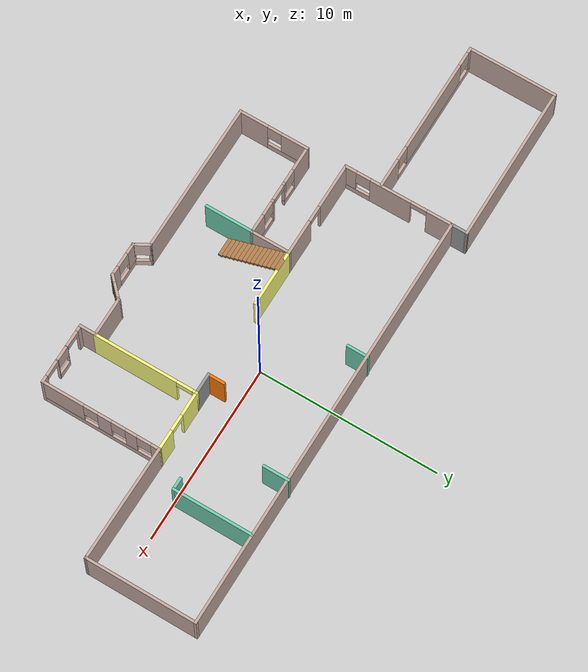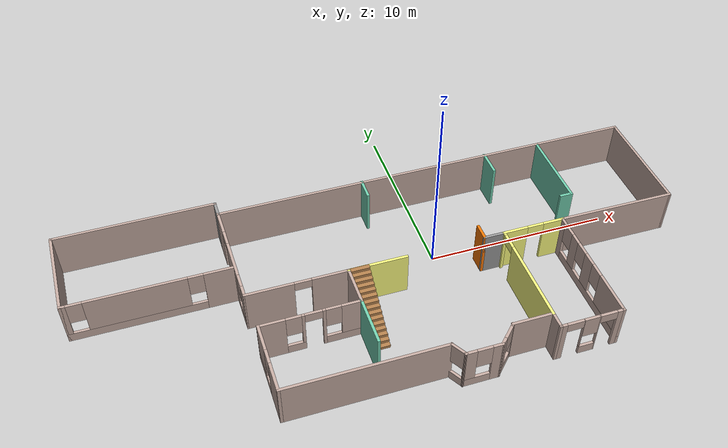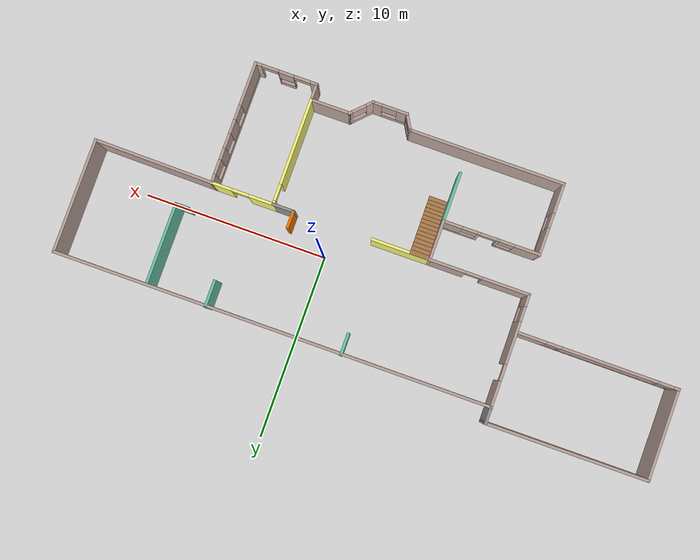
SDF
<sdf version="1.6">
 <model name="roboHouse">
  <pose>-3.13444 -1.49025 0 0 -0 0</pose>
  <link name="Stairs_0">
   <visual name="Stairs_0_Visual_0">
    <pose>-1.50756 -3.39009 0.083333 0 -0 -3.14159</pose>
    <geometry><box><size>1 0.233333 0.166667</size></box></geometry>
    <material>
     <script><uri>file://media/materials/scripts/gazebo.material</uri><name>Gazebo/Wood</name></script>
     <ambient>0.760784 0.662745 0.627451 1</ambient>
    </material>
    <meta><layer>0</layer></meta>
   </visual>
   <collision name="Stairs_0_Collision_0">
    <geometry><box><size>1 0.233333 0.166667</size></box></geometry>
    <pose>-1.50756 -3.39009 0.083333 0 -0 -3.14159</pose>
   </collision>
   <visual name="Stairs_0_Visual_1">
    <pose>-1.50756 -3.15675 0.25 0 -0 -3.14159</pose>
    <geometry><box><size>1 0.233333 0.166667</size></box></geometry>
    <material>
     <script><uri>file://media/materials/scripts/gazebo.material</uri><name>Gazebo/Wood</name></script>
     <ambient>0.760784 0.662745 0.627451 1</ambient>
    </material>
    <meta><layer>0</layer></meta>
   </visual>
   <collision name="Stairs_0_Collision_1">
    <geometry><box><size>1 0.233333 0.166667</size></box></geometry>
    <pose>-1.50756 -3.15675 0.25 0 -0 -3.14159</pose>
   </collision>
   <visual name="Stairs_0_Visual_2">
    <pose>-1.50756 -2.92342 0.416667 0 -0 -3.14159</pose>
    <geometry><box><size>1 0.233333 0.166667</size></box></geometry>
    <material>
     <script><uri>file://media/materials/scripts/gazebo.material</uri><name>Gazebo/Wood</name></script>
     <ambient>0.760784 0.662745 0.627451 1</ambient>
    </material>
    <meta><layer>0</layer></meta>
   </visual>
   <collision name="Stairs_0_Collision_2">
    <geometry><box><size>1 0.233333 0.166667</size></box></geometry>
    <pose>-1.50756 -2.92342 0.416667 0 -0 -3.14159</pose>
   </collision>
   <visual name="Stairs_0_Visual_3">
    <pose>-1.50756 -2.69009 0.583333 0 -0 -3.14159</pose>
    <geometry><box><size>1 0.233333 0.166667</size></box></geometry>
    <material>
     <script><uri>file://media/materials/scripts/gazebo.material</uri><name>Gazebo/Wood</name></script>
     <ambient>0.760784 0.662745 0.627451 1</ambient>
    </material>
    <meta><layer>0</layer></meta>
   </visual>
   <collision name="Stairs_0_Collision_3">
    <geometry><box><size>1 0.233333 0.166667</size></box></geometry>
    <pose>-1.50756 -2.69009 0.583333 0 -0 -3.14159</pose>
   </collision>
   <visual name="Stairs_0_Visual_4">
    <pose>-1.50756 -2.45675 0.75 0 -0 -3.14159</pose>
    <geometry><box><size>1 0.233333 0.166667</size></box></geometry>
    <material>
     <script><uri>file://media/materials/scripts/gazebo.material</uri><name>Gazebo/Wood</name></script>
     <ambient>0.760784 0.662745 0.627451 1</ambient>
    </material>
    <meta><layer>0</layer></meta>
   </visual>
   <collision name="Stairs_0_Collision_4">
    <geometry><box><size>1 0.233333 0.166667</size></box></geometry>
    <pose>-1.50756 -2.45675 0.75 0 -0 -3.14159</pose>
   </collision>
   <visual name="Stairs_0_Visual_5">
    <pose>-1.50756 -2.22342 0.916667 0 -0 -3.14159</pose>
    <geometry><box><size>1 0.233333 0.166667</size></box></geometry>
    <material>
     <script><uri>file://media/materials/scripts/gazebo.material</uri><name>Gazebo/Wood</name></script>
     <ambient>0.760784 0.662745 0.627451 1</ambient>
    </material>
    <meta><layer>0</layer></meta>
   </visual>
   <collision name="Stairs_0_Collision_5">
    <geometry><box><size>1 0.233333 0.166667</size></box></geometry>
    <pose>-1.50756 -2.22342 0.916667 0 -0 -3.14159</pose>
   </collision>
   <visual name="Stairs_0_Visual_6">
    <pose>-1.50756 -1.99009 1.08333 0 -0 -3.14159</pose>
    <geometry><box><size>1 0.233333 0.166667</size></box></geometry>
    <material>
     <script><uri>file://media/materials/scripts/gazebo.material</uri><name>Gazebo/Wood</name></script>
     <ambient>0.760784 0.662745 0.627451 1</ambient>
    </material>
    <meta><layer>0</layer></meta>
   </visual>
   <collision name="Stairs_0_Collision_6">
    <geometry><box><size>1 0.233333 0.166667</size></box></geometry>
    <pose>-1.50756 -1.99009 1.08333 0 -0 -3.14159</pose>
   </collision>
   <visual name="Stairs_0_Visual_7">
    <pose>-1.50756 -1.75675 1.25 0 -0 -3.14159</pose>
    <geometry><box><size>1 0.233333 0.166667</size></box></geometry>
    <material>
     <script><uri>file://media/materials/scripts/gazebo.material</uri><name>Gazebo/Wood</name></script>
     <ambient>0.760784 0.662745 0.627451 1</ambient>
    </material>
    <meta><layer>0</layer></meta>
   </visual>
   <collision name="Stairs_0_Collision_7">
    <geometry><box><size>1 0.233333 0.166667</size></box></geometry>
    <pose>-1.50756 -1.75675 1.25 0 -0 -3.14159</pose>
   </collision>
   <visual name="Stairs_0_Visual_8">
    <pose>-1.50756 -1.52342 1.41667 0 -0 -3.14159</pose>
    <geometry><box><size>1 0.233333 0.166667</size></box></geometry>
    <material>
     <script><uri>file://media/materials/scripts/gazebo.material</uri><name>Gazebo/Wood</name></script>
     <ambient>0.760784 0.662745 0.627451 1</ambient>
    </material>
    <meta><layer>0</layer></meta>
   </visual>
   <collision name="Stairs_0_Collision_8">
    <geometry><box><size>1 0.233333 0.166667</size></box></geometry>
    <pose>-1.50756 -1.52342 1.41667 0 -0 -3.14159</pose>
   </collision>
   <visual name="Stairs_0_Visual_9">
    <pose>-1.50756 -1.29009 1.58333 0 -0 -3.14159</pose>
    <geometry><box><size>1 0.233333 0.166667</size></box></geometry>
    <material>
     <script><uri>file://media/materials/scripts/gazebo.material</uri><name>Gazebo/Wood</name></script>
     <ambient>0.760784 0.662745 0.627451 1</ambient>
    </material>
    <meta><layer>0</layer></meta>
   </visual>
   <collision name="Stairs_0_Collision_9">
    <geometry><box><size>1 0.233333 0.166667</size></box></geometry>
    <pose>-1.50756 -1.29009 1.58333 0 -0 -3.14159</pose>
   </collision>
   <visual name="Stairs_0_Visual_10">
    <pose>-1.50756 -1.05675 1.75 0 -0 -3.14159</pose>
    <geometry><box><size>1 0.233333 0.166667</size></box></geometry>
    <material>
     <script><uri>file://media/materials/scripts/gazebo.material</uri><name>Gazebo/Wood</name></script>
     <ambient>0.760784 0.662745 0.627451 1</ambient>
    </material>
    <meta><layer>0</layer></meta>
   </visual>
   <collision name="Stairs_0_Collision_10">
    <geometry><box><size>1 0.233333 0.166667</size></box></geometry>
    <pose>-1.50756 -1.05675 1.75 0 -0 -3.14159</pose>
   </collision>
   <visual name="Stairs_0_Visual_11">
    <pose>-1.50756 -0.823421 1.91667 0 -0 -3.14159</pose>
    <geometry><box><size>1 0.233333 0.166667</size></box></geometry>
    <material>
     <script><uri>file://media/materials/scripts/gazebo.material</uri><name>Gazebo/Wood</name></script>
     <ambient>0.760784 0.662745 0.627451 1</ambient>
    </material>
    <meta><layer>0</layer></meta>
   </visual>
   <collision name="Stairs_0_Collision_11">
    <geometry><box><size>1 0.233333 0.166667</size></box></geometry>
    <pose>-1.50756 -0.823421 1.91667 0 -0 -3.14159</pose>
   </collision>
   <visual name="Stairs_0_Visual_12">
    <pose>-1.50756 -0.590088 2.08333 0 -0 -3.14159</pose>
    <geometry><box><size>1 0.233333 0.166667</size></box></geometry>
    <material>
     <script><uri>file://media/materials/scripts/gazebo.material</uri><name>Gazebo/Wood</name></script>
     <ambient>0.760784 0.662745 0.627451 1</ambient>
    </material>
    <meta><layer>0</layer></meta>
   </visual>
   <collision name="Stairs_0_Collision_12">
    <geometry><box><size>1 0.233333 0.166667</size></box></geometry>
    <pose>-1.50756 -0.590088 2.08333 0 -0 -3.14159</pose>
   </collision>
   <visual name="Stairs_0_Visual_13">
    <pose>-1.50756 -0.356754 2.25 0 -0 -3.14159</pose>
    <geometry><box><size>1 0.233333 0.166667</size></box></geometry>
    <material>
     <script><uri>file://media/materials/scripts/gazebo.material</uri><name>Gazebo/Wood</name></script>
     <ambient>0.760784 0.662745 0.627451 1</ambient>
    </material>
    <meta><layer>0</layer></meta>
   </visual>
   <collision name="Stairs_0_Collision_13">
    <geometry><box><size>1 0.233333 0.166667</size></box></geometry>
    <pose>-1.50756 -0.356754 2.25 0 -0 -3.14159</pose>
   </collision>
   <visual name="Stairs_0_Visual_14">
    <pose>-1.50756 -0.123421 2.41667 0 -0 -3.14159</pose>
    <geometry><box><size>1 0.233333 0.166667</size></box></geometry>
    <material>
     <script><uri>file://media/materials/scripts/gazebo.material</uri><name>Gazebo/Wood</name></script>
     <ambient>0.760784 0.662745 0.627451 1</ambient>
    </material>
    <meta><layer>0</layer></meta>
   </visual>
   <collision name="Stairs_0_Collision_14">
    <geometry><box><size>1 0.233333 0.166667</size></box></geometry>
    <pose>-1.50756 -0.123421 2.41667 0 -0 -3.14159</pose>
   </collision>
  </link>
  <link name="Wall_1">
   <pose>9.75444 -3.36976 0 0 0 -1.5708</pose>
   <visual name="Wall_1_Visual_0">
    <pose>-3.11075 0 1.25 0 -0 0</pose>
    <geometry><box><size>0.5285 0.15 2.5</size></box></geometry>
    <material>
     <script><uri>file://media/materials/scripts/gazebo.material</uri><name>Gazebo/Grey</name></script>
     <ambient>0.760784 0.662745 0.627451 1</ambient>
    </material>
    <meta><layer>0</layer></meta>
   </visual>
   <collision name="Wall_1_Collision_0">
    <geometry><box><size>0.5285 0.15 2.5</size></box></geometry>
    <pose>-3.11075 0 1.25 0 -0 0</pose>
   </collision>
   <visual name="Wall_1_Visual_1">
    <pose>0.26425 0 0.25 0 -0 0</pose>
    <geometry><box><size>6.2215 0.15 0.5</size></box></geometry>
    <material>
     <script><uri>file://media/materials/scripts/gazebo.material</uri><name>Gazebo/Grey</name></script>
     <ambient>0.760784 0.662745 0.627451 1</ambient>
    </material>
    <meta><layer>0</layer></meta>
   </visual>
   <collision name="Wall_1_Collision_1">
    <geometry><box><size>6.2215 0.15 0.5</size></box></geometry>
    <pose>0.26425 0 0.25 0 -0 0</pose>
   </collision>
   <visual name="Wall_1_Visual_2">
    <pose>-1.72468 0 1.5 0 -0 0</pose>
    <geometry><box><size>0.643636 0.15 2</size></box></geometry>
    <material>
     <script><uri>file://media/materials/scripts/gazebo.material</uri><name>Gazebo/Grey</name></script>
     <ambient>0.760784 0.662745 0.627451 1</ambient>
    </material>
    <meta><layer>0</layer></meta>
   </visual>
   <collision name="Wall_1_Collision_2">
    <geometry><box><size>0.643636 0.15 2</size></box></geometry>
    <pose>-1.72468 0 1.5 0 -0 0</pose>
   </collision>
   <visual name="Wall_1_Visual_3">
    <pose>-0.215811 0 1.5 0 -0 0</pose>
    <geometry><box><size>0.774106 0.15 2</size></box></geometry>
    <material>
     <script><uri>file://media/materials/scripts/gazebo.material</uri><name>Gazebo/Grey</name></script>
     <ambient>0.760784 0.662745 0.627451 1</ambient>
    </material>
    <meta><layer>0</layer></meta>
   </visual>
   <collision name="Wall_1_Collision_3">
    <geometry><box><size>0.774106 0.15 2</size></box></geometry>
    <pose>-0.215811 0 1.5 0 -0 0</pose>
   </collision>
   <visual name="Wall_1_Visual_4">
    <pose>2.17312 0 1.5 0 -0 0</pose>
    <geometry><box><size>2.40376 0.15 2</size></box></geometry>
    <material>
     <script><uri>file://media/materials/scripts/gazebo.material</uri><name>Gazebo/Grey</name></script>
     <ambient>0.760784 0.662745 0.627451 1</ambient>
    </material>
    <meta><layer>0</layer></meta>
   </visual>
   <collision name="Wall_1_Collision_4">
    <geometry><box><size>2.40376 0.15 2</size></box></geometry>
    <pose>2.17312 0 1.5 0 -0 0</pose>
   </collision>
   <visual name="Wall_1_Visual_5">
    <pose>-2.4465 0 1.9 0 -0 0</pose>
    <geometry><box><size>0.8 0.15 1.2</size></box></geometry>
    <material>
     <script><uri>file://media/materials/scripts/gazebo.material</uri><name>Gazebo/Grey</name></script>
     <ambient>0.760784 0.662745 0.627451 1</ambient>
    </material>
    <meta><layer>0</layer></meta>
   </visual>
   <collision name="Wall_1_Collision_5">
    <geometry><box><size>0.8 0.15 1.2</size></box></geometry>
    <pose>-2.4465 0 1.9 0 -0 0</pose>
   </collision>
   <visual name="Wall_1_Visual_6">
    <pose>-1.00286 0 1.9 0 -0 0</pose>
    <geometry><box><size>0.8 0.15 1.2</size></box></geometry>
    <material>
     <script><uri>file://media/materials/scripts/gazebo.material</uri><name>Gazebo/Grey</name></script>
     <ambient>0.760784 0.662745 0.627451 1</ambient>
    </material>
    <meta><layer>0</layer></meta>
   </visual>
   <collision name="Wall_1_Collision_6">
    <geometry><box><size>0.8 0.15 1.2</size></box></geometry>
    <pose>-1.00286 0 1.9 0 -0 0</pose>
   </collision>
   <visual name="Wall_1_Visual_7">
    <pose>0.571241 0 1.9 0 -0 0</pose>
    <geometry><box><size>0.8 0.15 1.2</size></box></geometry>
    <material>
     <script><uri>file://media/materials/scripts/gazebo.material</uri><name>Gazebo/Grey</name></script>
     <ambient>0.760784 0.662745 0.627451 1</ambient>
    </material>
    <meta><layer>0</layer></meta>
   </visual>
   <collision name="Wall_1_Collision_7">
    <geometry><box><size>0.8 0.15 1.2</size></box></geometry>
    <pose>0.571241 0 1.9 0 -0 0</pose>
   </collision>
  </link>
  <link name="Wall_10">
   <pose>-4.68535 -2.17899 0 0 -0 0.003566</pose>
   <visual name="Wall_10_Visual_0">
    <pose>-1.95766 0 1.25 0 -0 0</pose>
    <geometry><box><size>1.4143 0.15 2.5</size></box></geometry>
    <material>
     <script><uri>file://media/materials/scripts/gazebo.material</uri><name>Gazebo/Grey</name></script>
     <ambient>0.760784 0.662745 0.627451 1</ambient>
    </material>
    <meta><layer>0</layer></meta>
   </visual>
   <collision name="Wall_10_Collision_0">
    <geometry><box><size>1.4143 0.15 2.5</size></box></geometry>
    <pose>-1.95766 0 1.25 0 -0 0</pose>
   </collision>
   <visual name="Wall_10_Visual_1">
    <pose>0.68156 0 1.25 0 -0 0</pose>
    <geometry><box><size>0.155471 0.15 2.5</size></box></geometry>
    <material>
     <script><uri>file://media/materials/scripts/gazebo.material</uri><name>Gazebo/Grey</name></script>
     <ambient>0.760784 0.662745 0.627451 1</ambient>
    </material>
    <meta><layer>0</layer></meta>
   </visual>
   <collision name="Wall_10_Collision_1">
    <geometry><box><size>0.155471 0.15 2.5</size></box></geometry>
    <pose>0.68156 0 1.25 0 -0 0</pose>
   </collision>
   <visual name="Wall_10_Visual_2">
    <pose>-0.773344 0 0.25 0 -0 0</pose>
    <geometry><box><size>0.954338 0.15 0.5</size></box></geometry>
    <material>
     <script><uri>file://media/materials/scripts/gazebo.material</uri><name>Gazebo/Grey</name></script>
     <ambient>0.760784 0.662745 0.627451 1</ambient>
    </material>
    <meta><layer>0</layer></meta>
   </visual>
   <collision name="Wall_10_Collision_2">
    <geometry><box><size>0.954338 0.15 0.5</size></box></geometry>
    <pose>-0.773344 0 0.25 0 -0 0</pose>
   </collision>
   <visual name="Wall_10_Visual_3">
    <pose>1.71206 0 0.25 0 -0 0</pose>
    <geometry><box><size>1.90552 0.15 0.5</size></box></geometry>
    <material>
     <script><uri>file://media/materials/scripts/gazebo.material</uri><name>Gazebo/Grey</name></script>
     <ambient>0.760784 0.662745 0.627451 1</ambient>
    </material>
    <meta><layer>0</layer></meta>
   </visual>
   <collision name="Wall_10_Collision_3">
    <geometry><box><size>1.90552 0.15 0.5</size></box></geometry>
    <pose>1.71206 0 0.25 0 -0 0</pose>
   </collision>
   <visual name="Wall_10_Visual_4">
    <pose>-0.373344 0 1.5 0 -0 0</pose>
    <geometry><box><size>0.154338 0.15 2</size></box></geometry>
    <material>
     <script><uri>file://media/materials/scripts/gazebo.material</uri><name>Gazebo/Grey</name></script>
     <ambient>0.760784 0.662745 0.627451 1</ambient>
    </material>
    <meta><layer>0</layer></meta>
   </visual>
   <collision name="Wall_10_Collision_4">
    <geometry><box><size>0.154338 0.15 2</size></box></geometry>
    <pose>-0.373344 0 1.5 0 -0 0</pose>
   </collision>
   <visual name="Wall_10_Visual_5">
    <pose>-0.373344 0 1.5 0 -0 0</pose>
    <geometry><box><size>0.154338 0.15 2</size></box></geometry>
    <material>
     <script><uri>file://media/materials/scripts/gazebo.material</uri><name>Gazebo/Grey</name></script>
     <ambient>0.760784 0.662745 0.627451 1</ambient>
    </material>
    <meta><layer>0</layer></meta>
   </visual>
   <collision name="Wall_10_Collision_5">
    <geometry><box><size>0.154338 0.15 2</size></box></geometry>
    <pose>-0.373344 0 1.5 0 -0 0</pose>
   </collision>
   <visual name="Wall_10_Visual_6">
    <pose>2.11205 0 1.5 0 -0 0</pose>
    <geometry><box><size>1.10552 0.15 2</size></box></geometry>
    <material>
     <script><uri>file://media/materials/scripts/gazebo.material</uri><name>Gazebo/Grey</name></script>
     <ambient>0.760784 0.662745 0.627451 1</ambient>
    </material>
    <meta><layer>0</layer></meta>
   </visual>
   <collision name="Wall_10_Collision_6">
    <geometry><box><size>1.10552 0.15 2</size></box></geometry>
    <pose>2.11205 0 1.5 0 -0 0</pose>
   </collision>
   <visual name="Wall_10_Visual_7">
    <pose>-0.850514 0 1.9 0 -0 0</pose>
    <geometry><box><size>0.8 0.15 1.2</size></box></geometry>
    <material>
     <script><uri>file://media/materials/scripts/gazebo.material</uri><name>Gazebo/Grey</name></script>
     <ambient>0.760784 0.662745 0.627451 1</ambient>
    </material>
    <meta><layer>0</layer></meta>
   </visual>
   <collision name="Wall_10_Collision_7">
    <geometry><box><size>0.8 0.15 1.2</size></box></geometry>
    <pose>-0.850514 0 1.9 0 -0 0</pose>
   </collision>
   <visual name="Wall_10_Visual_8">
    <pose>1.1593 0 1.9 0 -0 0</pose>
    <geometry><box><size>0.8 0.15 1.2</size></box></geometry>
    <material>
     <script><uri>file://media/materials/scripts/gazebo.material</uri><name>Gazebo/Grey</name></script>
     <ambient>0.760784 0.662745 0.627451 1</ambient>
    </material>
    <meta><layer>0</layer></meta>
   </visual>
   <collision name="Wall_10_Collision_8">
    <geometry><box><size>0.8 0.15 1.2</size></box></geometry>
    <pose>1.1593 0 1.9 0 -0 0</pose>
   </collision>
   <visual name="Wall_10_Visual_9">
    <pose>0.153825 0 2.25 0 -0 0</pose>
    <geometry><box><size>0.9 0.15 0.5</size></box></geometry>
    <material>
     <script><uri>file://media/materials/scripts/gazebo.material</uri><name>Gazebo/Grey</name></script>
     <ambient>0.760784 0.662745 0.627451 1</ambient>
    </material>
    <meta><layer>0</layer></meta>
   </visual>
   <collision name="Wall_10_Collision_9">
    <geometry><box><size>0.9 0.15 0.5</size></box></geometry>
    <pose>0.153825 0 2.25 0 -0 0</pose>
   </collision>
   <visual name="Wall_10_Visual_10">
    <pose>0.153825 0 2.25 0 -0 0</pose>
    <geometry><box><size>0.9 0.15 0.5</size></box></geometry>
    <material>
     <script><uri>file://media/materials/scripts/gazebo.material</uri><name>Gazebo/Grey</name></script>
     <ambient>0.760784 0.662745 0.627451 1</ambient>
    </material>
    <meta><layer>0</layer></meta>
   </visual>
   <collision name="Wall_10_Collision_10">
    <geometry><box><size>0.9 0.15 0.5</size></box></geometry>
    <pose>0.153825 0 2.25 0 -0 0</pose>
   </collision>
  </link>
  <link name="Wall_11">
   <collision name="Wall_11_Collision">
    <geometry><box><size>2.25 0.15 2.5</size></box></geometry>
    <pose>0 0 1.25 0 -0 0</pose>
   </collision>
   <visual name="Wall_11_Visual">
    <pose>0 0 1.25 0 -0 0</pose>
    <geometry><box><size>2.25 0.15 2.5</size></box></geometry>
    <material>
     <script><uri>file://media/materials/scripts/gazebo.material</uri><name>Gazebo/Grey</name></script>
     <ambient>0.760784 0.662745 0.627451 1</ambient>
    </material>
    <meta><layer>0</layer></meta>
   </visual>
   <pose>-2.09556 -1.11975 0 0 -0 1.5708</pose>
  </link>
  <link name="Wall_13">
   <collision name="Wall_13_Collision">
    <geometry><box><size>6.51573 0.15 2.5</size></box></geometry>
    <pose>0 0 1.25 0 -0 0</pose>
   </collision>
   <visual name="Wall_13_Visual">
    <pose>0 0 1.25 0 -0 0</pose>
    <geometry><box><size>6.51573 0.15 2.5</size></box></geometry>
    <material>
     <script><uri>file://media/materials/scripts/gazebo.material</uri><name>Gazebo/Grey</name></script>
     <ambient>0.760784 0.662745 0.627451 1</ambient>
    </material>
    <meta><layer>0</layer></meta>
   </visual>
   <pose>12.9371 -0.107254 0 0 0 -0.011782</pose>
  </link>
  <link name="Wall_14">
   <collision name="Wall_14_Collision">
    <geometry><box><size>6.25 0.15 2.5</size></box></geometry>
    <pose>0 0 1.25 0 -0 0</pose>
   </collision>
   <visual name="Wall_14_Visual">
    <pose>0 0 1.25 0 -0 0</pose>
    <geometry><box><size>6.25 0.15 2.5</size></box></geometry>
    <material>
     <script><uri>file://media/materials/scripts/gazebo.material</uri><name>Gazebo/Grey</name></script>
     <ambient>0.760784 0.662745 0.627451 1</ambient>
    </material>
    <meta><layer>0</layer></meta>
   </visual>
   <pose>16.1197 2.90525 0 0 -0 1.5708</pose>
  </link>
  <link name="Wall_15">
   <collision name="Wall_15_Collision">
    <geometry><box><size>23.75 0.15 2.5</size></box></geometry>
    <pose>0 0 1.25 0 -0 0</pose>
   </collision>
   <visual name="Wall_15_Visual">
    <pose>0 0 1.25 0 -0 0</pose>
    <geometry><box><size>23.75 0.15 2.5</size></box></geometry>
    <material>
     <script><uri>file://media/materials/scripts/gazebo.material</uri><name>Gazebo/Grey</name></script>
     <ambient>0.760784 0.662745 0.627451 1</ambient>
    </material>
    <meta><layer>0</layer></meta>
   </visual>
   <pose>4.31973 5.95525 0 0 -0 3.14159</pose>
  </link>
  <link name="Wall_16">
   <pose>-7.46291 2.94275 0 0 0 -1.56503</pose>
   <visual name="Wall_16_Visual_0">
    <pose>-2.34957 0 1.25 0 -0 0</pose>
    <geometry><box><size>1.47595 0.15 2.5</size></box></geometry>
    <material>
     <script><uri>file://media/materials/scripts/gazebo.material</uri><name>Gazebo/Grey</name></script>
     <ambient>0.760784 0.662745 0.627451 1</ambient>
    </material>
    <meta><layer>0</layer></meta>
   </visual>
   <collision name="Wall_16_Collision_0">
    <geometry><box><size>1.47595 0.15 2.5</size></box></geometry>
    <pose>-2.34957 0 1.25 0 -0 0</pose>
   </collision>
   <visual name="Wall_16_Visual_1">
    <pose>0.43708 0 1.25 0 -0 0</pose>
    <geometry><box><size>2.29735 0.15 2.5</size></box></geometry>
    <material>
     <script><uri>file://media/materials/scripts/gazebo.material</uri><name>Gazebo/Grey</name></script>
     <ambient>0.760784 0.662745 0.627451 1</ambient>
    </material>
    <meta><layer>0</layer></meta>
   </visual>
   <collision name="Wall_16_Collision_1">
    <geometry><box><size>2.29735 0.15 2.5</size></box></geometry>
    <pose>0.43708 0 1.25 0 -0 0</pose>
   </collision>
   <visual name="Wall_16_Visual_2">
    <pose>2.33665 0 0.25 0 -0 0</pose>
    <geometry><box><size>1.50179 0.15 0.5</size></box></geometry>
    <material>
     <script><uri>file://media/materials/scripts/gazebo.material</uri><name>Gazebo/Grey</name></script>
     <ambient>0.760784 0.662745 0.627451 1</ambient>
    </material>
    <meta><layer>0</layer></meta>
   </visual>
   <collision name="Wall_16_Collision_2">
    <geometry><box><size>1.50179 0.15 0.5</size></box></geometry>
    <pose>2.33665 0 0.25 0 -0 0</pose>
   </collision>
   <visual name="Wall_16_Visual_3">
    <pose>2.73665 0 1.5 0 -0 0</pose>
    <geometry><box><size>0.701794 0.15 2</size></box></geometry>
    <material>
     <script><uri>file://media/materials/scripts/gazebo.material</uri><name>Gazebo/Grey</name></script>
     <ambient>0.760784 0.662745 0.627451 1</ambient>
    </material>
    <meta><layer>0</layer></meta>
   </visual>
   <collision name="Wall_16_Collision_3">
    <geometry><box><size>0.701794 0.15 2</size></box></geometry>
    <pose>2.73665 0 1.5 0 -0 0</pose>
   </collision>
   <visual name="Wall_16_Visual_4">
    <pose>1.98576 0 1.9 0 -0 0</pose>
    <geometry><box><size>0.8 0.15 1.2</size></box></geometry>
    <material>
     <script><uri>file://media/materials/scripts/gazebo.material</uri><name>Gazebo/Grey</name></script>
     <ambient>0.760784 0.662745 0.627451 1</ambient>
    </material>
    <meta><layer>0</layer></meta>
   </visual>
   <collision name="Wall_16_Collision_4">
    <geometry><box><size>0.8 0.15 1.2</size></box></geometry>
    <pose>1.98576 0 1.9 0 -0 0</pose>
   </collision>
   <visual name="Wall_16_Visual_5">
    <pose>-1.1616 0 2.25 0 -0 0</pose>
    <geometry><box><size>0.9 0.15 0.5</size></box></geometry>
    <material>
     <script><uri>file://media/materials/scripts/gazebo.material</uri><name>Gazebo/Grey</name></script>
     <ambient>0.760784 0.662745 0.627451 1</ambient>
    </material>
    <meta><layer>0</layer></meta>
   </visual>
   <collision name="Wall_16_Collision_5">
    <geometry><box><size>0.9 0.15 0.5</size></box></geometry>
    <pose>-1.1616 0 2.25 0 -0 0</pose>
   </collision>
  </link>
  <link name="Wall_17">
   <pose>-4.77056 -0.069754 0 0 -0 0</pose>
   <visual name="Wall_17_Visual_0">
    <pose>-1.45331 0 1.25 0 -0 0</pose>
    <geometry><box><size>2.59339 0.15 2.5</size></box></geometry>
    <material>
     <script><uri>file://media/materials/scripts/gazebo.material</uri><name>Gazebo/Grey</name></script>
     <ambient>0.760784 0.662745 0.627451 1</ambient>
    </material>
    <meta><layer>0</layer></meta>
   </visual>
   <collision name="Wall_17_Collision_0">
    <geometry><box><size>2.59339 0.15 2.5</size></box></geometry>
    <pose>-1.45331 0 1.25 0 -0 0</pose>
   </collision>
   <visual name="Wall_17_Visual_1">
    <pose>1.7467 0 1.25 0 -0 0</pose>
    <geometry><box><size>2.00661 0.15 2.5</size></box></geometry>
    <material>
     <script><uri>file://media/materials/scripts/gazebo.material</uri><name>Gazebo/Grey</name></script>
     <ambient>0.760784 0.662745 0.627451 1</ambient>
    </material>
    <meta><layer>0</layer></meta>
   </visual>
   <collision name="Wall_17_Collision_1">
    <geometry><box><size>2.00661 0.15 2.5</size></box></geometry>
    <pose>1.7467 0 1.25 0 -0 0</pose>
   </collision>
   <visual name="Wall_17_Visual_2">
    <pose>0.29339 0 2.25 0 -0 0</pose>
    <geometry><box><size>0.9 0.15 0.5</size></box></geometry>
    <material>
     <script><uri>file://media/materials/scripts/gazebo.material</uri><name>Gazebo/Grey</name></script>
     <ambient>0.760784 0.662745 0.627451 1</ambient>
    </material>
    <meta><layer>0</layer></meta>
   </visual>
   <collision name="Wall_17_Collision_2">
    <geometry><box><size>0.9 0.15 0.5</size></box></geometry>
    <pose>0.29339 0 2.25 0 -0 0</pose>
   </collision>
  </link>
  <link name="Wall_19">
   <pose>6.40444 -2.94475 0 0 -0 1.5708</pose>
   <visual name="Wall_19_Visual_0">
    <pose>-0.589035 0 1.25 0 -0 0</pose>
    <geometry><box><size>4.72193 0.15 2.5</size></box></geometry>
    <material>
     <script><uri>file://media/materials/scripts/gazebo.material</uri><name>Gazebo/Grey</name></script>
     <ambient>1 1 0.498039 1</ambient>
    </material>
    <meta><layer>0</layer></meta>
   </visual>
   <collision name="Wall_19_Collision_0">
    <geometry><box><size>4.72193 0.15 2.5</size></box></geometry>
    <pose>-0.589035 0 1.25 0 -0 0</pose>
   </collision>
   <visual name="Wall_19_Visual_1">
    <pose>2.81096 0 1.25 0 -0 0</pose>
    <geometry><box><size>0.27807 0.15 2.5</size></box></geometry>
    <material>
     <script><uri>file://media/materials/scripts/gazebo.material</uri><name>Gazebo/Grey</name></script>
     <ambient>1 1 0.498039 1</ambient>
    </material>
    <meta><layer>0</layer></meta>
   </visual>
   <collision name="Wall_19_Collision_1">
    <geometry><box><size>0.27807 0.15 2.5</size></box></geometry>
    <pose>2.81096 0 1.25 0 -0 0</pose>
   </collision>
   <visual name="Wall_19_Visual_2">
    <pose>2.22193 0 2.25 0 -0 0</pose>
    <geometry><box><size>0.9 0.15 0.5</size></box></geometry>
    <material>
     <script><uri>file://media/materials/scripts/gazebo.material</uri><name>Gazebo/Grey</name></script>
     <ambient>1 1 0.498039 1</ambient>
    </material>
    <meta><layer>0</layer></meta>
   </visual>
   <collision name="Wall_19_Collision_2">
    <geometry><box><size>0.9 0.15 0.5</size></box></geometry>
    <pose>2.22193 0 2.25 0 -0 0</pose>
   </collision>
  </link>
  <link name="Wall_2">
   <pose>8.07944 -6.66975 0 0 -0 3.14159</pose>
   <visual name="Wall_2_Visual_0">
    <pose>-1.539 0 1.25 0 -0 0</pose>
    <geometry><box><size>0.422 0.15 2.5</size></box></geometry>
    <material>
     <script><uri>file://media/materials/scripts/gazebo.material</uri><name>Gazebo/Grey</name></script>
     <ambient>0.760784 0.662745 0.627451 1</ambient>
    </material>
    <meta><layer>0</layer></meta>
   </visual>
   <collision name="Wall_2_Collision_0">
    <geometry><box><size>0.422 0.15 2.5</size></box></geometry>
    <pose>-1.539 0 1.25 0 -0 0</pose>
   </collision>
   <visual name="Wall_2_Visual_1">
    <pose>-0.403875 0 1.25 0 -0 0</pose>
    <geometry><box><size>0.04825 0.15 2.5</size></box></geometry>
    <material>
     <script><uri>file://media/materials/scripts/gazebo.material</uri><name>Gazebo/Grey</name></script>
     <ambient>0.760784 0.662745 0.627451 1</ambient>
    </material>
    <meta><layer>0</layer></meta>
   </visual>
   <collision name="Wall_2_Collision_1">
    <geometry><box><size>0.04825 0.15 2.5</size></box></geometry>
    <pose>-0.403875 0 1.25 0 -0 0</pose>
   </collision>
   <visual name="Wall_2_Visual_2">
    <pose>1.54655 0 1.25 0 -0 0</pose>
    <geometry><box><size>0.4069 0.15 2.5</size></box></geometry>
    <material>
     <script><uri>file://media/materials/scripts/gazebo.material</uri><name>Gazebo/Grey</name></script>
     <ambient>0.760784 0.662745 0.627451 1</ambient>
    </material>
    <meta><layer>0</layer></meta>
   </visual>
   <collision name="Wall_2_Collision_2">
    <geometry><box><size>0.4069 0.15 2.5</size></box></geometry>
    <pose>1.54655 0 1.25 0 -0 0</pose>
   </collision>
   <visual name="Wall_2_Visual_3">
    <pose>0.031675 0 0.25 0 -0 0</pose>
    <geometry><box><size>0.82285 0.15 0.5</size></box></geometry>
    <material>
     <script><uri>file://media/materials/scripts/gazebo.material</uri><name>Gazebo/Grey</name></script>
     <ambient>0.760784 0.662745 0.627451 1</ambient>
    </material>
    <meta><layer>0</layer></meta>
   </visual>
   <collision name="Wall_2_Collision_3">
    <geometry><box><size>0.82285 0.15 0.5</size></box></geometry>
    <pose>0.031675 0 0.25 0 -0 0</pose>
   </collision>
   <visual name="Wall_2_Visual_4">
    <pose>0.431675 0 1.5 0 -0 0</pose>
    <geometry><box><size>0.02285 0.15 2</size></box></geometry>
    <material>
     <script><uri>file://media/materials/scripts/gazebo.material</uri><name>Gazebo/Grey</name></script>
     <ambient>0.760784 0.662745 0.627451 1</ambient>
    </material>
    <meta><layer>0</layer></meta>
   </visual>
   <collision name="Wall_2_Collision_4">
    <geometry><box><size>0.02285 0.15 2</size></box></geometry>
    <pose>0.431675 0 1.5 0 -0 0</pose>
   </collision>
   <visual name="Wall_2_Visual_5">
    <pose>0.02025 0 1.9 0 -0 0</pose>
    <geometry><box><size>0.8 0.15 1.2</size></box></geometry>
    <material>
     <script><uri>file://media/materials/scripts/gazebo.material</uri><name>Gazebo/Grey</name></script>
     <ambient>0.760784 0.662745 0.627451 1</ambient>
    </material>
    <meta><layer>0</layer></meta>
   </visual>
   <collision name="Wall_2_Collision_5">
    <geometry><box><size>0.8 0.15 1.2</size></box></geometry>
    <pose>0.02025 0 1.9 0 -0 0</pose>
   </collision>
   <visual name="Wall_2_Visual_6">
    <pose>-0.878 0 2.25 0 -0 0</pose>
    <geometry><box><size>0.9 0.15 0.5</size></box></geometry>
    <material>
     <script><uri>file://media/materials/scripts/gazebo.material</uri><name>Gazebo/Grey</name></script>
     <ambient>0.760784 0.662745 0.627451 1</ambient>
    </material>
    <meta><layer>0</layer></meta>
   </visual>
   <collision name="Wall_2_Collision_6">
    <geometry><box><size>0.9 0.15 0.5</size></box></geometry>
    <pose>-0.878 0 2.25 0 -0 0</pose>
   </collision>
   <visual name="Wall_2_Visual_7">
    <pose>0.8931 0 2.25 0 -0 0</pose>
    <geometry><box><size>0.9 0.15 0.5</size></box></geometry>
    <material>
     <script><uri>file://media/materials/scripts/gazebo.material</uri><name>Gazebo/Grey</name></script>
     <ambient>0.760784 0.662745 0.627451 1</ambient>
    </material>
    <meta><layer>0</layer></meta>
   </visual>
   <collision name="Wall_2_Collision_7">
    <geometry><box><size>0.9 0.15 0.5</size></box></geometry>
    <pose>0.8931 0 2.25 0 -0 0</pose>
   </collision>
  </link>
  <link name="Wall_20">
   <pose>8.07944 -0.069754 0 0 -0 0</pose>
   <visual name="Wall_20_Visual_0">
    <pose>-1.0469 0 1.25 0 -0 0</pose>
    <geometry><box><size>1.4062 0.15 2.5</size></box></geometry>
    <material>
     <script><uri>file://media/materials/scripts/gazebo.material</uri><name>Gazebo/Grey</name></script>
     <ambient>1 1 0.498039 1</ambient>
    </material>
    <meta><layer>0</layer></meta>
   </visual>
   <collision name="Wall_20_Collision_0">
    <geometry><box><size>1.4062 0.15 2.5</size></box></geometry>
    <pose>-1.0469 0 1.25 0 -0 0</pose>
   </collision>
   <visual name="Wall_20_Visual_1">
    <pose>1.1531 0 1.25 0 -0 0</pose>
    <geometry><box><size>1.19381 0.15 2.5</size></box></geometry>
    <material>
     <script><uri>file://media/materials/scripts/gazebo.material</uri><name>Gazebo/Grey</name></script>
     <ambient>1 1 0.498039 1</ambient>
    </material>
    <meta><layer>0</layer></meta>
   </visual>
   <collision name="Wall_20_Collision_1">
    <geometry><box><size>1.19381 0.15 2.5</size></box></geometry>
    <pose>1.1531 0 1.25 0 -0 0</pose>
   </collision>
   <visual name="Wall_20_Visual_2">
    <pose>0.106195 0 2.25 0 -0 0</pose>
    <geometry><box><size>0.9 0.15 0.5</size></box></geometry>
    <material>
     <script><uri>file://media/materials/scripts/gazebo.material</uri><name>Gazebo/Grey</name></script>
     <ambient>1 1 0.498039 1</ambient>
    </material>
    <meta><layer>0</layer></meta>
   </visual>
   <collision name="Wall_20_Collision_2">
    <geometry><box><size>0.9 0.15 0.5</size></box></geometry>
    <pose>0.106195 0 2.25 0 -0 0</pose>
   </collision>
  </link>
  <link name="Wall_22">
   <pose>-11.8204 1.93566 0 0 -0 3.14159</pose>
   <visual name="Wall_22_Visual_0">
    <pose>-3.55806 0 1.25 0 -0 0</pose>
    <geometry><box><size>1.63389 0.15 2.5</size></box></geometry>
    <material>
     <script><uri>file://media/materials/scripts/gazebo.material</uri><name>Gazebo/Grey</name></script>
     <ambient>0.760784 0.662745 0.627451 1</ambient>
    </material>
    <meta><layer>0</layer></meta>
   </visual>
   <collision name="Wall_22_Collision_0">
    <geometry><box><size>1.63389 0.15 2.5</size></box></geometry>
    <pose>-3.55806 0 1.25 0 -0 0</pose>
   </collision>
   <visual name="Wall_22_Visual_1">
    <pose>0.816943 0 0.25 0 -0 0</pose>
    <geometry><box><size>7.11611 0.15 0.5</size></box></geometry>
    <material>
     <script><uri>file://media/materials/scripts/gazebo.material</uri><name>Gazebo/Grey</name></script>
     <ambient>0.760784 0.662745 0.627451 1</ambient>
    </material>
    <meta><layer>0</layer></meta>
   </visual>
   <collision name="Wall_22_Collision_1">
    <geometry><box><size>7.11611 0.15 0.5</size></box></geometry>
    <pose>0.816943 0 0.25 0 -0 0</pose>
   </collision>
   <visual name="Wall_22_Visual_2">
    <pose>0.649688 0 1.5 0 -0 0</pose>
    <geometry><box><size>5.1816 0.15 2</size></box></geometry>
    <material>
     <script><uri>file://media/materials/scripts/gazebo.material</uri><name>Gazebo/Grey</name></script>
     <ambient>0.760784 0.662745 0.627451 1</ambient>
    </material>
    <meta><layer>0</layer></meta>
   </visual>
   <collision name="Wall_22_Collision_2">
    <geometry><box><size>5.1816 0.15 2</size></box></geometry>
    <pose>0.649688 0 1.5 0 -0 0</pose>
   </collision>
   <visual name="Wall_22_Visual_3">
    <pose>4.20774 0 1.5 0 -0 0</pose>
    <geometry><box><size>0.334511 0.15 2</size></box></geometry>
    <material>
     <script><uri>file://media/materials/scripts/gazebo.material</uri><name>Gazebo/Grey</name></script>
     <ambient>0.760784 0.662745 0.627451 1</ambient>
    </material>
    <meta><layer>0</layer></meta>
   </visual>
   <collision name="Wall_22_Collision_3">
    <geometry><box><size>0.334511 0.15 2</size></box></geometry>
    <pose>4.20774 0 1.5 0 -0 0</pose>
   </collision>
   <visual name="Wall_22_Visual_4">
    <pose>-2.34111 0 1.9 0 -0 0</pose>
    <geometry><box><size>0.8 0.15 1.2</size></box></geometry>
    <material>
     <script><uri>file://media/materials/scripts/gazebo.material</uri><name>Gazebo/Grey</name></script>
     <ambient>0.760784 0.662745 0.627451 1</ambient>
    </material>
    <meta><layer>0</layer></meta>
   </visual>
   <collision name="Wall_22_Collision_4">
    <geometry><box><size>0.8 0.15 1.2</size></box></geometry>
    <pose>-2.34111 0 1.9 0 -0 0</pose>
   </collision>
   <visual name="Wall_22_Visual_5">
    <pose>3.64049 0 1.9 0 -0 0</pose>
    <geometry><box><size>0.8 0.15 1.2</size></box></geometry>
    <material>
     <script><uri>file://media/materials/scripts/gazebo.material</uri><name>Gazebo/Grey</name></script>
     <ambient>0.760784 0.662745 0.627451 1</ambient>
    </material>
    <meta><layer>0</layer></meta>
   </visual>
   <collision name="Wall_22_Collision_5">
    <geometry><box><size>0.8 0.15 1.2</size></box></geometry>
    <pose>3.64049 0 1.9 0 -0 0</pose>
   </collision>
  </link>
  <link name="Wall_23">
   <collision name="Wall_23_Collision">
    <geometry><box><size>5 0.15 2.5</size></box></geometry>
    <pose>0 0 1.25 0 -0 0</pose>
   </collision>
   <visual name="Wall_23_Visual">
    <pose>0 0 1.25 0 -0 0</pose>
    <geometry><box><size>5 0.15 2.5</size></box></geometry>
    <material>
     <script><uri>file://media/materials/scripts/gazebo.material</uri><name>Gazebo/Grey</name></script>
     <ambient>0.760784 0.662745 0.627451 1</ambient>
    </material>
    <meta><layer>0</layer></meta>
   </visual>
   <pose>-16.1204 4.36067 0 0 -0 1.5708</pose>
  </link>
  <link name="Wall_24">
   <collision name="Wall_24_Collision">
    <geometry><box><size>8.79019 0.15 2.5</size></box></geometry>
    <pose>0 0 1.25 0 -0 0</pose>
   </collision>
   <visual name="Wall_24_Visual">
    <pose>0 0 1.25 0 -0 0</pose>
    <geometry><box><size>8.79019 0.15 2.5</size></box></geometry>
    <material>
     <script><uri>file://media/materials/scripts/gazebo.material</uri><name>Gazebo/Grey</name></script>
     <ambient>0.760784 0.662745 0.627451 1</ambient>
    </material>
    <meta><layer>0</layer></meta>
   </visual>
   <pose>-11.8004 6.79545 0 0 -0 0.002266</pose>
  </link>
  <link name="Wall_25">
   <collision name="Wall_25_Collision">
    <geometry><box><size>1 0.15 2.5</size></box></geometry>
    <pose>0 0 1.25 0 -0 0</pose>
   </collision>
   <visual name="Wall_25_Visual">
    <pose>0 0 1.25 0 -0 0</pose>
    <geometry><box><size>1 0.15 2.5</size></box></geometry>
    <material>
     <script><uri>file://media/materials/scripts/gazebo.material</uri><name>Gazebo/Grey</name></script>
     <ambient>1 1 1 1</ambient>
    </material>
    <meta><layer>0</layer></meta>
   </visual>
   <pose>-7.48027 6.38025 0 0 0 -1.5708</pose>
  </link>
  <link name="Wall_27">
   <collision name="Wall_27_Collision">
    <geometry><box><size>3.25 0.15 2.5</size></box></geometry>
    <pose>0 0 1.25 0 -0 0</pose>
   </collision>
   <visual name="Wall_27_Visual">
    <pose>0 0 1.25 0 -0 0</pose>
    <geometry><box><size>3.25 0.15 2.5</size></box></geometry>
    <material>
     <script><uri>file://media/materials/scripts/gazebo.material</uri><name>Gazebo/Grey</name></script>
     <ambient>1 1 0.498039 1</ambient>
    </material>
    <meta><layer>0</layer></meta>
   </visual>
   <pose>-0.545557 -0.069754 0 0 -0 0</pose>
  </link>
  <link name="Wall_29">
   <collision name="Wall_29_Collision">
    <geometry><box><size>1.25 0.15 2.5</size></box></geometry>
    <pose>0 0 1.25 0 -0 0</pose>
   </collision>
   <visual name="Wall_29_Visual">
    <pose>0 0 1.25 0 -0 0</pose>
    <geometry><box><size>1.25 0.15 2.5</size></box></geometry>
    <material>
     <script><uri>file://media/materials/scripts/gazebo.material</uri><name>Gazebo/Grey</name></script>
     <ambient>1 1 1 1</ambient>
    </material>
    <meta><layer>0</layer></meta>
   </visual>
   <pose>5.85444 -0.069754 0 0 -0 3.14159</pose>
  </link>
  <link name="Wall_3">
   <collision name="Wall_3_Collision">
    <geometry><box><size>1 0.15 2.5</size></box></geometry>
    <pose>0 0 1.25 0 -0 0</pose>
   </collision>
   <visual name="Wall_3_Visual">
    <pose>0 0 1.25 0 -0 0</pose>
    <geometry><box><size>1 0.15 2.5</size></box></geometry>
    <material>
     <script><uri>file://media/materials/scripts/gazebo.material</uri><name>Gazebo/Grey</name></script>
     <ambient>0.760784 0.662745 0.627451 1</ambient>
    </material>
    <meta><layer>0</layer></meta>
   </visual>
   <pose>6.40444 -6.24475 0 0 -0 1.5708</pose>
  </link>
  <link name="Wall_30">
   <collision name="Wall_30_Collision">
    <geometry><box><size>1 0.15 2.5</size></box></geometry>
    <pose>0 0 1.25 0 -0 0</pose>
   </collision>
   <visual name="Wall_30_Visual">
    <pose>0 0 1.25 0 -0 0</pose>
    <geometry><box><size>1 0.15 2.5</size></box></geometry>
    <material>
     <script><uri>file://media/materials/scripts/gazebo.material</uri><name>Gazebo/Grey</name></script>
     <ambient>0.996078 0.47451 0.0196078 1</ambient>
    </material>
    <meta><layer>0</layer></meta>
   </visual>
   <pose>5.30444 0.355246 0 0 -0 1.5708</pose>
  </link>
  <link name="Wall_33">
   <collision name="Wall_33_Collision">
    <geometry><box><size>4.5 0.15 2.5</size></box></geometry>
    <pose>0 0 1.25 0 -0 0</pose>
   </collision>
   <visual name="Wall_33_Visual">
    <pose>0 0 1.25 0 -0 0</pose>
    <geometry><box><size>4.5 0.15 2.5</size></box></geometry>
    <material>
     <script><uri>file://media/materials/scripts/gazebo.material</uri><name>Gazebo/Grey</name></script>
     <ambient>0.435294 0.796078 0.67451 1</ambient>
    </material>
    <meta><layer>0</layer></meta>
   </visual>
   <pose>11.089 3.7484 0 0 0 -1.5708</pose>
  </link>
  <link name="Wall_34">
   <collision name="Wall_34_Collision">
    <geometry><box><size>0.75 0.15 2.5</size></box></geometry>
    <pose>0 0 1.25 0 -0 0</pose>
   </collision>
   <visual name="Wall_34_Visual">
    <pose>0 0 1.25 0 -0 0</pose>
    <geometry><box><size>0.75 0.15 2.5</size></box></geometry>
    <material>
     <script><uri>file://media/materials/scripts/gazebo.material</uri><name>Gazebo/Grey</name></script>
     <ambient>0.435294 0.796078 0.67451 1</ambient>
    </material>
    <meta><layer>0</layer></meta>
   </visual>
   <pose>10.789 1.5734 0 0 -0 3.14159</pose>
  </link>
  <link name="Wall_36">
   <collision name="Wall_36_Collision">
    <geometry><box><size>1.25 0.15 2.5</size></box></geometry>
    <pose>0 0 1.25 0 -0 0</pose>
   </collision>
   <visual name="Wall_36_Visual">
    <pose>0 0 1.25 0 -0 0</pose>
    <geometry><box><size>1.25 0.15 2.5</size></box></geometry>
    <material>
     <script><uri>file://media/materials/scripts/gazebo.material</uri><name>Gazebo/Grey</name></script>
     <ambient>0.435294 0.796078 0.67451 1</ambient>
    </material>
    <meta><layer>0</layer></meta>
   </visual>
   <pose>0.559971 5.44336 0 0 0 -1.5708</pose>
  </link>
  <link name="Wall_38">
   <collision name="Wall_38_Collision">
    <geometry><box><size>1.5 0.15 2.5</size></box></geometry>
    <pose>0 0 1.25 0 -0 0</pose>
   </collision>
   <visual name="Wall_38_Visual">
    <pose>0 0 1.25 0 -0 0</pose>
    <geometry><box><size>1.5 0.15 2.5</size></box></geometry>
    <material>
     <script><uri>file://media/materials/scripts/gazebo.material</uri><name>Gazebo/Grey</name></script>
     <ambient>0.435294 0.796078 0.67451 1</ambient>
    </material>
    <meta><layer>0</layer></meta>
   </visual>
   <pose>7.87082 5.31836 0 0 0 -1.5708</pose>
  </link>
  <link name="Wall_4">
   <collision name="Wall_4_Collision">
    <geometry><box><size>2.25 0.15 2.5</size></box></geometry>
    <pose>0 0 1.25 0 -0 0</pose>
   </collision>
   <visual name="Wall_4_Visual">
    <pose>0 0 1.25 0 -0 0</pose>
    <geometry><box><size>2.25 0.15 2.5</size></box></geometry>
    <material>
     <script><uri>file://media/materials/scripts/gazebo.material</uri><name>Gazebo/Grey</name></script>
     <ambient>0.760784 0.662745 0.627451 1</ambient>
    </material>
    <meta><layer>0</layer></meta>
   </visual>
   <pose>5.35444 -5.81975 0 0 -0 3.14159</pose>
  </link>
  <link name="Wall_40">
   <collision name="Wall_40_Collision">
    <geometry><box><size>2.75 0.15 2.5</size></box></geometry>
    <pose>0 0 1.25 0 -0 0</pose>
   </collision>
   <visual name="Wall_40_Visual">
    <pose>0 0 1.25 0 -0 0</pose>
    <geometry><box><size>2.75 0.15 2.5</size></box></geometry>
    <material>
     <script><uri>file://media/materials/scripts/gazebo.material</uri><name>Gazebo/Grey</name></script>
     <ambient>0.435294 0.796078 0.67451 1</ambient>
    </material>
    <meta><layer>0</layer></meta>
   </visual>
   <pose>-2.09556 -3.46975 0 0 0 -1.5708</pose>
  </link>
  <link name="Wall_5">
   <pose>3.82715 -6.29705 0 0 0 -2.35619</pose>
   <visual name="Wall_5_Visual_0">
    <pose>-0.64049 0 1.25 0 -0 0</pose>
    <geometry><box><size>0.21902 0.15 2.5</size></box></geometry>
    <material>
     <script><uri>file://media/materials/scripts/gazebo.material</uri><name>Gazebo/Grey</name></script>
     <ambient>0.760784 0.662745 0.627451 1</ambient>
    </material>
    <meta><layer>0</layer></meta>
   </visual>
   <collision name="Wall_5_Collision_0">
    <geometry><box><size>0.21902 0.15 2.5</size></box></geometry>
    <pose>-0.64049 0 1.25 0 -0 0</pose>
   </collision>
   <visual name="Wall_5_Visual_1">
    <pose>0.10951 0 0.25 0 -0 0</pose>
    <geometry><box><size>1.28098 0.15 0.5</size></box></geometry>
    <material>
     <script><uri>file://media/materials/scripts/gazebo.material</uri><name>Gazebo/Grey</name></script>
     <ambient>0.760784 0.662745 0.627451 1</ambient>
    </material>
    <meta><layer>0</layer></meta>
   </visual>
   <collision name="Wall_5_Collision_1">
    <geometry><box><size>1.28098 0.15 0.5</size></box></geometry>
    <pose>0.10951 0 0.25 0 -0 0</pose>
   </collision>
   <visual name="Wall_5_Visual_2">
    <pose>0.50951 0 1.5 0 -0 0</pose>
    <geometry><box><size>0.48098 0.15 2</size></box></geometry>
    <material>
     <script><uri>file://media/materials/scripts/gazebo.material</uri><name>Gazebo/Grey</name></script>
     <ambient>0.760784 0.662745 0.627451 1</ambient>
    </material>
    <meta><layer>0</layer></meta>
   </visual>
   <collision name="Wall_5_Collision_2">
    <geometry><box><size>0.48098 0.15 2</size></box></geometry>
    <pose>0.50951 0 1.5 0 -0 0</pose>
   </collision>
   <visual name="Wall_5_Visual_3">
    <pose>-0.13098 0 1.9 0 -0 0</pose>
    <geometry><box><size>0.8 0.15 1.2</size></box></geometry>
    <material>
     <script><uri>file://media/materials/scripts/gazebo.material</uri><name>Gazebo/Grey</name></script>
     <ambient>0.760784 0.662745 0.627451 1</ambient>
    </material>
    <meta><layer>0</layer></meta>
   </visual>
   <collision name="Wall_5_Collision_3">
    <geometry><box><size>0.8 0.15 1.2</size></box></geometry>
    <pose>-0.13098 0 1.9 0 -0 0</pose>
   </collision>
  </link>
  <link name="Wall_6">
   <pose>2.42485 -6.77435 0 0 -0 3.14159</pose>
   <visual name="Wall_6_Visual_0">
    <pose>-0.717812 0 1.25 0 -0 0</pose>
    <geometry><box><size>0.564377 0.15 2.5</size></box></geometry>
    <material>
     <script><uri>file://media/materials/scripts/gazebo.material</uri><name>Gazebo/Grey</name></script>
     <ambient>0.760784 0.662745 0.627451 1</ambient>
    </material>
    <meta><layer>0</layer></meta>
   </visual>
   <collision name="Wall_6_Collision_0">
    <geometry><box><size>0.564377 0.15 2.5</size></box></geometry>
    <pose>-0.717812 0 1.25 0 -0 0</pose>
   </collision>
   <visual name="Wall_6_Visual_1">
    <pose>0.282188 0 0.25 0 -0 0</pose>
    <geometry><box><size>1.43562 0.15 0.5</size></box></geometry>
    <material>
     <script><uri>file://media/materials/scripts/gazebo.material</uri><name>Gazebo/Grey</name></script>
     <ambient>0.760784 0.662745 0.627451 1</ambient>
    </material>
    <meta><layer>0</layer></meta>
   </visual>
   <collision name="Wall_6_Collision_1">
    <geometry><box><size>1.43562 0.15 0.5</size></box></geometry>
    <pose>0.282188 0 0.25 0 -0 0</pose>
   </collision>
   <visual name="Wall_6_Visual_2">
    <pose>0.682188 0 1.5 0 -0 0</pose>
    <geometry><box><size>0.635623 0.15 2</size></box></geometry>
    <material>
     <script><uri>file://media/materials/scripts/gazebo.material</uri><name>Gazebo/Grey</name></script>
     <ambient>0.760784 0.662745 0.627451 1</ambient>
    </material>
    <meta><layer>0</layer></meta>
   </visual>
   <collision name="Wall_6_Collision_2">
    <geometry><box><size>0.635623 0.15 2</size></box></geometry>
    <pose>0.682188 0 1.5 0 -0 0</pose>
   </collision>
   <visual name="Wall_6_Visual_3">
    <pose>-0.035623 0 1.9 0 -0 0</pose>
    <geometry><box><size>0.8 0.15 1.2</size></box></geometry>
    <material>
     <script><uri>file://media/materials/scripts/gazebo.material</uri><name>Gazebo/Grey</name></script>
     <ambient>0.760784 0.662745 0.627451 1</ambient>
    </material>
    <meta><layer>0</layer></meta>
   </visual>
   <collision name="Wall_6_Collision_3">
    <geometry><box><size>0.8 0.15 1.2</size></box></geometry>
    <pose>-0.035623 0 1.9 0 -0 0</pose>
   </collision>
  </link>
  <link name="Wall_7">
   <pose>1.28735 -6.40629 0 0 -0 2.0944</pose>
   <visual name="Wall_7_Visual_0">
    <pose>-0.435961 0 1.25 0 -0 0</pose>
    <geometry><box><size>0.128078 0.15 2.5</size></box></geometry>
    <material>
     <script><uri>file://media/materials/scripts/gazebo.material</uri><name>Gazebo/Grey</name></script>
     <ambient>0.760784 0.662745 0.627451 1</ambient>
    </material>
    <meta><layer>0</layer></meta>
   </visual>
   <collision name="Wall_7_Collision_0">
    <geometry><box><size>0.128078 0.15 2.5</size></box></geometry>
    <pose>-0.435961 0 1.25 0 -0 0</pose>
   </collision>
   <visual name="Wall_7_Visual_1">
    <pose>0.064039 0 0.25 0 -0 0</pose>
    <geometry><box><size>0.871922 0.15 0.5</size></box></geometry>
    <material>
     <script><uri>file://media/materials/scripts/gazebo.material</uri><name>Gazebo/Grey</name></script>
     <ambient>0.760784 0.662745 0.627451 1</ambient>
    </material>
    <meta><layer>0</layer></meta>
   </visual>
   <collision name="Wall_7_Collision_1">
    <geometry><box><size>0.871922 0.15 0.5</size></box></geometry>
    <pose>0.064039 0 0.25 0 -0 0</pose>
   </collision>
   <visual name="Wall_7_Visual_2">
    <pose>0.464039 0 1.5 0 -0 0</pose>
    <geometry><box><size>0.071922 0.15 2</size></box></geometry>
    <material>
     <script><uri>file://media/materials/scripts/gazebo.material</uri><name>Gazebo/Grey</name></script>
     <ambient>0.760784 0.662745 0.627451 1</ambient>
    </material>
    <meta><layer>0</layer></meta>
   </visual>
   <collision name="Wall_7_Collision_2">
    <geometry><box><size>0.071922 0.15 2</size></box></geometry>
    <pose>0.464039 0 1.5 0 -0 0</pose>
   </collision>
   <visual name="Wall_7_Visual_3">
    <pose>0.028078 0 1.9 0 -0 0</pose>
    <geometry><box><size>0.8 0.15 1.2</size></box></geometry>
    <material>
     <script><uri>file://media/materials/scripts/gazebo.material</uri><name>Gazebo/Grey</name></script>
     <ambient>0.760784 0.662745 0.627451 1</ambient>
    </material>
    <meta><layer>0</layer></meta>
   </visual>
   <collision name="Wall_7_Collision_3">
    <geometry><box><size>0.8 0.15 1.2</size></box></geometry>
    <pose>0.028078 0 1.9 0 -0 0</pose>
   </collision>
  </link>
  <link name="Wall_8">
   <collision name="Wall_8_Collision">
    <geometry><box><size>8.5 0.15 2.5</size></box></geometry>
    <pose>0 0 1.25 0 -0 0</pose>
   </collision>
   <visual name="Wall_8_Visual">
    <pose>0 0 1.25 0 -0 0</pose>
    <geometry><box><size>8.5 0.15 2.5</size></box></geometry>
    <material>
     <script><uri>file://media/materials/scripts/gazebo.material</uri><name>Gazebo/Grey</name></script>
     <ambient>0.760784 0.662745 0.627451 1</ambient>
    </material>
    <meta><layer>0</layer></meta>
   </visual>
   <pose>-3.10015 -6.03823 0 0 -0 3.14159</pose>
  </link>
  <link name="Wall_9">
   <pose>-7.27515 -4.11323 0 0 -0 1.5708</pose>
   <visual name="Wall_9_Visual_0">
    <pose>-1.16556 0 1.25 0 -0 0</pose>
    <geometry><box><size>1.66887 0.15 2.5</size></box></geometry>
    <material>
     <script><uri>file://media/materials/scripts/gazebo.material</uri><name>Gazebo/Grey</name></script>
     <ambient>0.760784 0.662745 0.627451 1</ambient>
    </material>
    <meta><layer>0</layer></meta>
   </visual>
   <collision name="Wall_9_Collision_0">
    <geometry><box><size>1.66887 0.15 2.5</size></box></geometry>
    <pose>-1.16556 0 1.25 0 -0 0</pose>
   </collision>
   <visual name="Wall_9_Visual_1">
    <pose>0.834436 0 0.25 0 -0 0</pose>
    <geometry><box><size>2.33113 0.15 0.5</size></box></geometry>
    <material>
     <script><uri>file://media/materials/scripts/gazebo.material</uri><name>Gazebo/Grey</name></script>
     <ambient>0.760784 0.662745 0.627451 1</ambient>
    </material>
    <meta><layer>0</layer></meta>
   </visual>
   <collision name="Wall_9_Collision_1">
    <geometry><box><size>2.33113 0.15 0.5</size></box></geometry>
    <pose>0.834436 0 0.25 0 -0 0</pose>
   </collision>
   <visual name="Wall_9_Visual_2">
    <pose>1.23444 0 1.5 0 -0 0</pose>
    <geometry><box><size>1.53113 0.15 2</size></box></geometry>
    <material>
     <script><uri>file://media/materials/scripts/gazebo.material</uri><name>Gazebo/Grey</name></script>
     <ambient>0.760784 0.662745 0.627451 1</ambient>
    </material>
    <meta><layer>0</layer></meta>
   </visual>
   <collision name="Wall_9_Collision_2">
    <geometry><box><size>1.53113 0.15 2</size></box></geometry>
    <pose>1.23444 0 1.5 0 -0 0</pose>
   </collision>
   <visual name="Wall_9_Visual_3">
    <pose>0.068873 0 1.9 0 -0 0</pose>
    <geometry><box><size>0.8 0.15 1.2</size></box></geometry>
    <material>
     <script><uri>file://media/materials/scripts/gazebo.material</uri><name>Gazebo/Grey</name></script>
     <ambient>0.760784 0.662745 0.627451 1</ambient>
    </material>
    <meta><layer>0</layer></meta>
   </visual>
   <collision name="Wall_9_Collision_3">
    <geometry><box><size>0.8 0.15 1.2</size></box></geometry>
    <pose>0.068873 0 1.9 0 -0 0</pose>
   </collision>
  </link>
  <static>1</static>
 </model>
</sdf>
